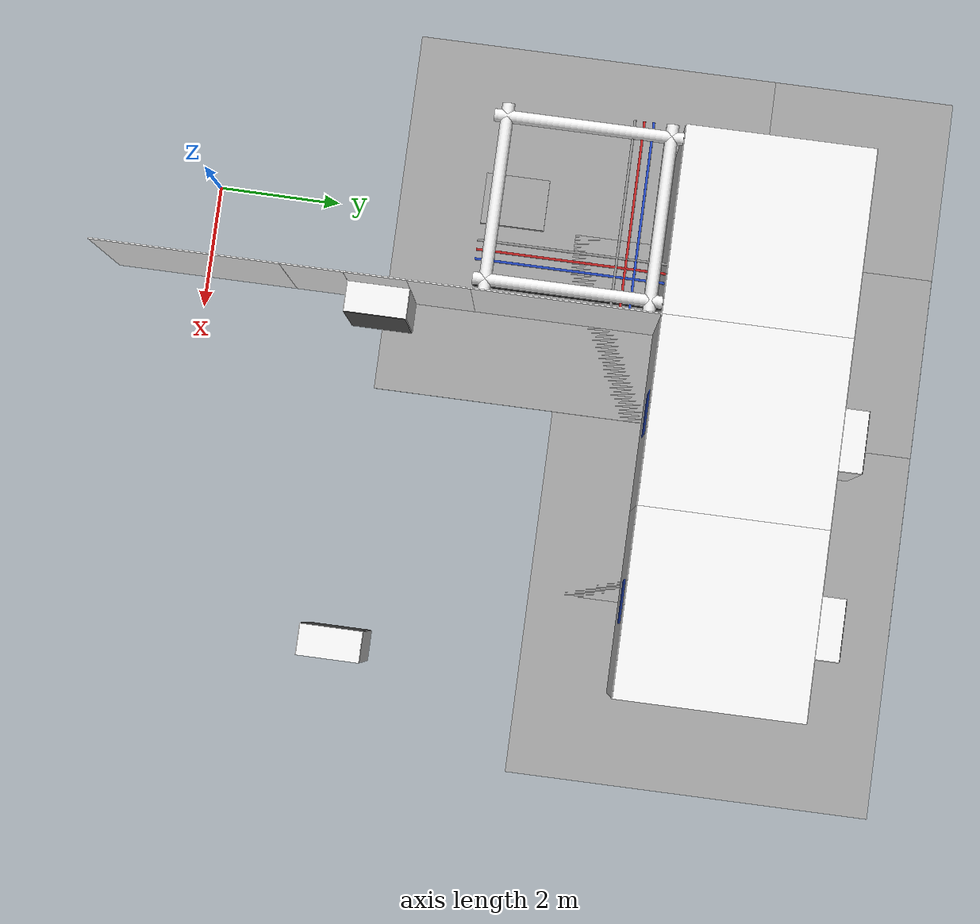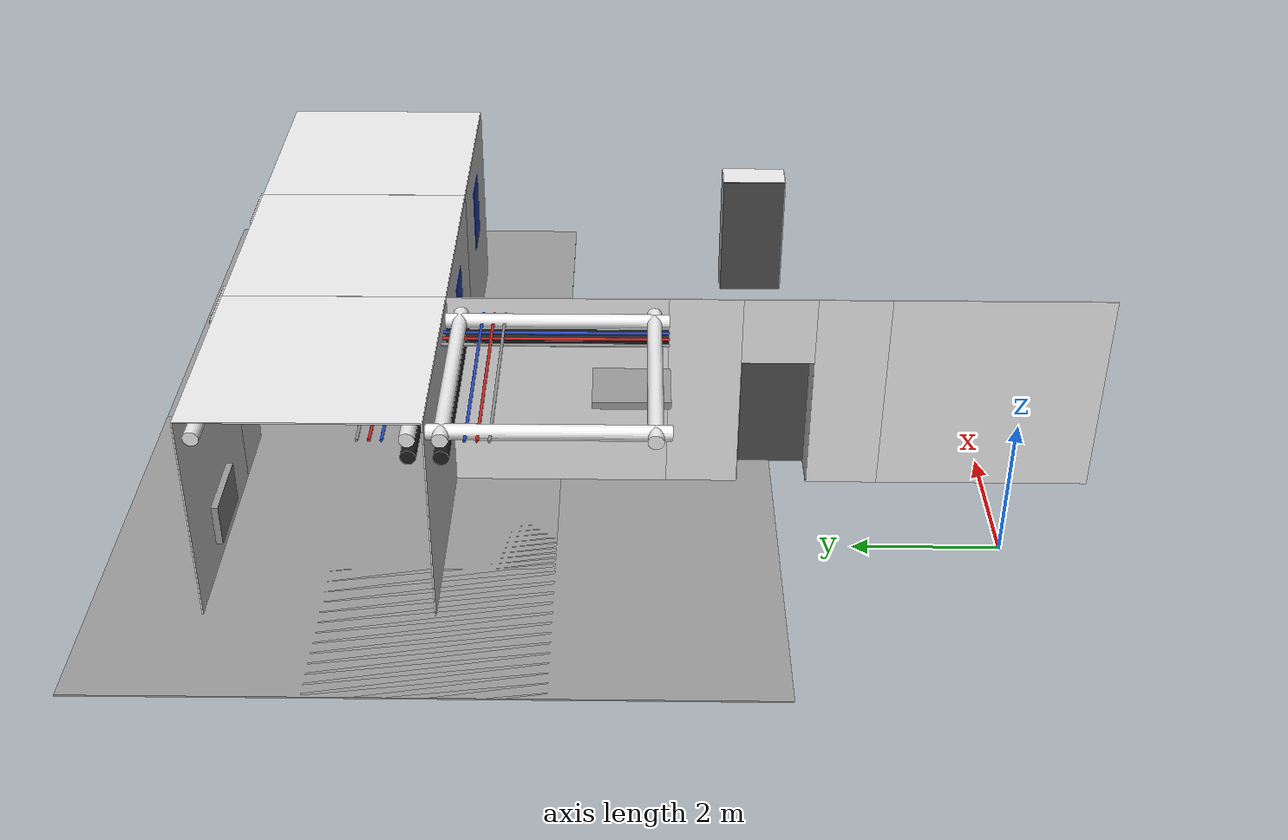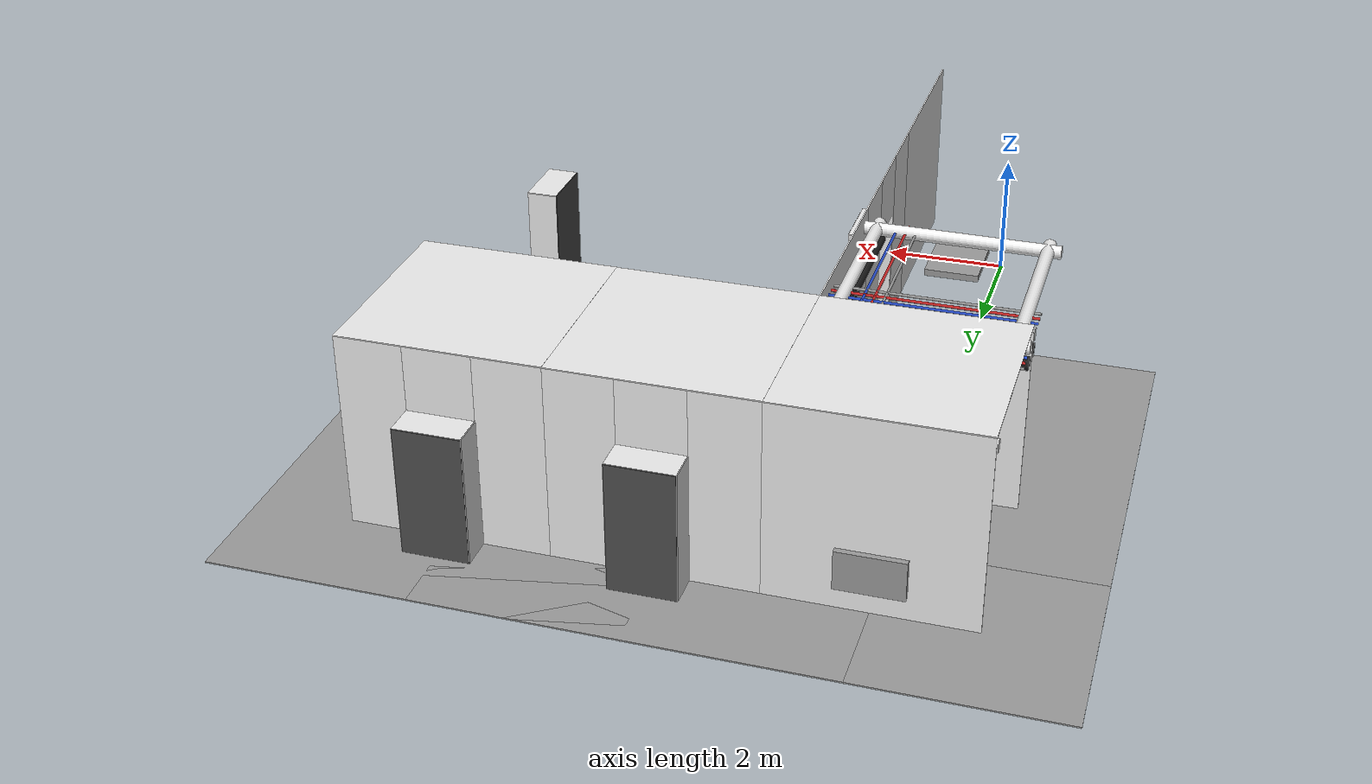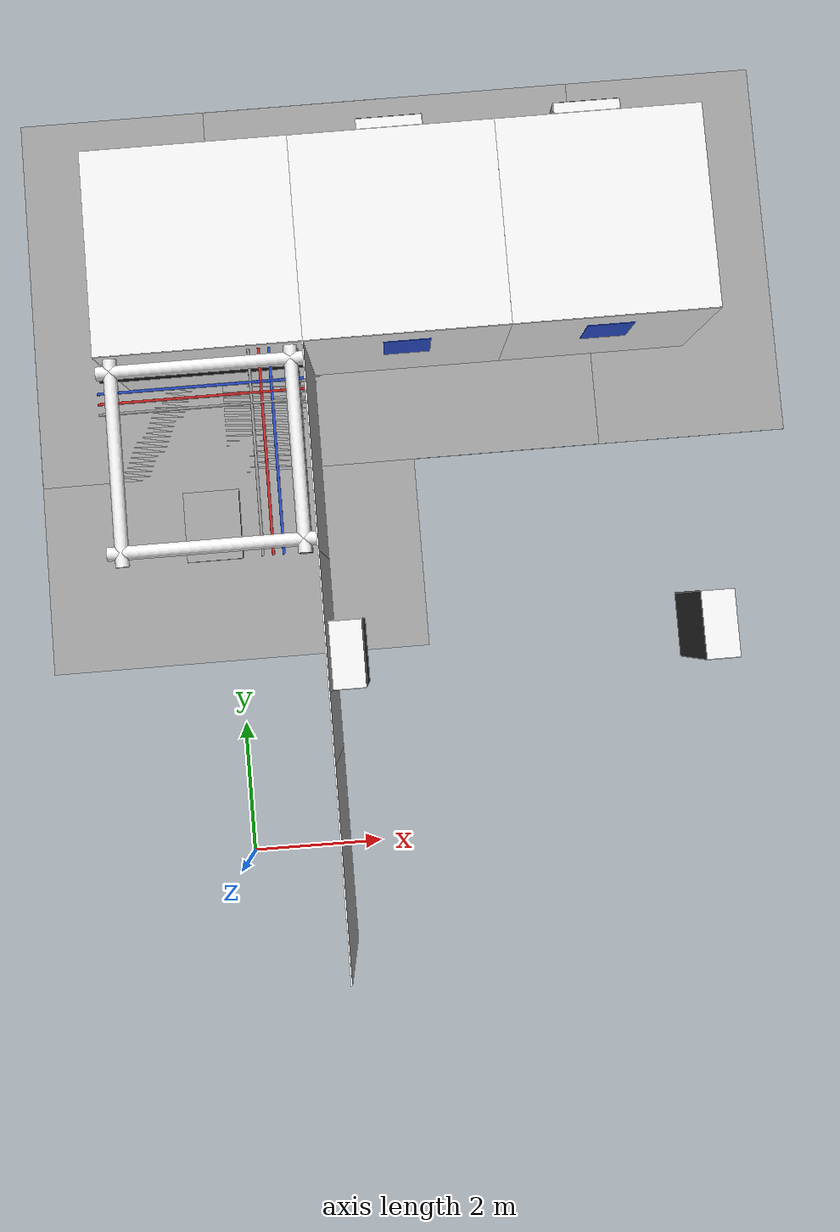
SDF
<sdf version="1.6">
 <world name="default">
  <model name="wall_right_0_0_0_0">
   <static>1</static>
   <pose>1.5 0.0 1.5 0.0 0.0 1.57</pose>
   <link name="link">
    <collision name="collision"><geometry><box><size>3.0 0.02 3.0</size></box></geometry></collision>
    <visual name="visual">
     <material>
      <script><name>Gazebo/White</name><uri>file://media/materials/scripts/gazebo.material</uri></script>
     </material>
     <geometry><box><size>3.0 0.02 3.0</size></box></geometry>
    </visual>
   </link>
  </model>
  <model name="wall_right_front_left_0_1_0_1">
   <static>1</static>
   <pose>1.5 4.0 1.5 0.0 0.0 1.57</pose>
   <link name="link">
    <collision name="collision"><geometry><box><size>1.0 0.02 3.0</size></box></geometry></collision>
    <visual name="visual">
     <material>
      <script><name>Gazebo/White</name><uri>file://media/materials/scripts/gazebo.material</uri></script>
     </material>
     <geometry><box><size>1.0 0.02 3.0</size></box></geometry>
    </visual>
   </link>
  </model>
  <model name="wall_right_front_right_0_1_0_1">
   <static>1</static>
   <pose>1.5 2.0 1.5 0.0 0.0 1.57</pose>
   <link name="link">
    <collision name="collision"><geometry><box><size>1.0 0.02 3.0</size></box></geometry></collision>
    <visual name="visual">
     <material>
      <script><name>Gazebo/White</name><uri>file://media/materials/scripts/gazebo.material</uri></script>
     </material>
     <geometry><box><size>1.0 0.02 3.0</size></box></geometry>
    </visual>
   </link>
  </model>
  <model name="wall_right_front_up_0_1_0_1">
   <static>1</static>
   <pose>1.5 3.0 2.5 0.0 0.0 1.57</pose>
   <link name="link">
    <collision name="collision"><geometry><box><size>1.0 0.02 1.0</size></box></geometry></collision>
    <visual name="visual">
     <material>
      <script><name>Gazebo/White</name><uri>file://media/materials/scripts/gazebo.material</uri></script>
     </material>
     <geometry><box><size>1.0 0.02 1.0</size></box></geometry>
    </visual>
   </link>
  </model>
  <model name="wall_right_inside_back_0_1_0_1">
   <static>1</static>
   <pose>2.0 3.0 1.0 0.0 0.0 1.57</pose>
   <link name="link">
    <collision name="collision"><geometry><box><size>1 0.02 2</size></box></geometry></collision>
    <visual name="visual">
     <material>
      <script><name>Gazebo/DarkGrey</name><uri>file://media/materials/scripts/gazebo.material</uri></script>
     </material>
     <geometry><box><size>1 0.02 2</size></box></geometry>
    </visual>
   </link>
  </model>
  <model name="wall_right_inside_left_0_1_0_1">
   <static>1</static>
   <pose>1.75 3.5 1.0 0.0 0.0 0.0</pose>
   <link name="link">
    <collision name="collision"><geometry><box><size>0.5 0.02 2</size></box></geometry></collision>
    <visual name="visual">
     <material>
      <script><name>Gazebo/White</name><uri>file://media/materials/scripts/gazebo.material</uri></script>
     </material>
     <geometry><box><size>0.5 0.02 2</size></box></geometry>
    </visual>
   </link>
  </model>
  <model name="wall_right_inside_right_0_1_0_1">
   <static>1</static>
   <pose>1.75 2.5 1.0 0.0 0.0 0.0</pose>
   <link name="link">
    <collision name="collision"><geometry><box><size>0.5 0.02 2</size></box></geometry></collision>
    <visual name="visual">
     <material>
      <script><name>Gazebo/White</name><uri>file://media/materials/scripts/gazebo.material</uri></script>
     </material>
     <geometry><box><size>0.5 0.02 2</size></box></geometry>
    </visual>
   </link>
  </model>
  <model name="wall_right_inside_top_0_1_0_1">
   <static>1</static>
   <pose>1.75 3.0 2.0 1.57 0.0 1.57</pose>
   <link name="link">
    <collision name="collision"><geometry><box><size>1 0.02 0.5</size></box></geometry></collision>
    <visual name="visual">
     <material>
      <script><name>Gazebo/White</name><uri>file://media/materials/scripts/gazebo.material</uri></script>
     </material>
     <geometry><box><size>1 0.02 0.5</size></box></geometry>
    </visual>
   </link>
  </model>
  <model name="wall_right_0_2_0_3">
   <static>1</static>
   <pose>1.5 6.0 1.5 0.0 0.0 1.57</pose>
   <link name="link">
    <collision name="collision"><geometry><box><size>3.0 0.02 3.0</size></box></geometry></collision>
    <visual name="visual">
     <material>
      <script><name>Gazebo/White</name><uri>file://media/materials/scripts/gazebo.material</uri></script>
     </material>
     <geometry><box><size>3.0 0.02 3.0</size></box></geometry>
    </visual>
   </link>
  </model>
  <model name="ceiling_1_0_2_0_3">
   <pose>0.0 5.0 2.55 0.0 0.0 0.0</pose>
   <link name="link_1">
    <visual name="visual">
     <geometry><box><size>0.8 1 0.1</size></box></geometry>
     <material>
      <script><uri>file://media/materials/scripts/gazebo.material</uri><name>Gazebo/Grey</name></script>
     </material>
    </visual>
    <collision name="collision"><geometry><box><size>0.8 1 0.1</size></box></geometry></collision>
   </link>
   <static>1</static>
  </model>
  <model name="white_pipe_left_0_2_0_3">
   <static>1</static>
   <pose>0.0 6.0 2.76 0.0 0.0 0.0</pose>
   <link name="link_0">
    <visual name="visual">
     <pose>-1.3 0 0 1.57 0 0</pose>
     <geometry><cylinder><radius>0.1</radius><length>3.0</length></cylinder></geometry>
     <material>
      <script><uri>file://media/materials/scripts/gazebo.material</uri><name>Gazebo/White</name></script>
     </material>
    </visual>
    <collision name="collision">
     <pose>-1.3 0 0 1.57 0 0</pose>
     <geometry><cylinder><radius>0.1</radius><length>3.0</length></cylinder></geometry>
    </collision>
   </link>
  </model>
  <model name="white_pipe_right_0_2_0_3">
   <static>1</static>
   <pose>0.0 6.0 2.76 0.0 0.0 0.0</pose>
   <link name="link_0">
    <visual name="visual">
     <pose>1.3 0 0 1.57 0 0</pose>
     <geometry><cylinder><radius>0.1</radius><length>3.0</length></cylinder></geometry>
     <material>
      <script><uri>file://media/materials/scripts/gazebo.material</uri><name>Gazebo/White</name></script>
     </material>
    </visual>
    <collision name="collision">
     <pose>1.3 0 0 1.57 0 0</pose>
     <geometry><cylinder><radius>0.1</radius><length>3.0</length></cylinder></geometry>
    </collision>
   </link>
  </model>
  <model name="black_pipe_right_0_2_0_3">
   <static>1</static>
   <pose>0.0 6.0 2.76 0.0 0.0 0.0</pose>
   <link name="link_0">
    <visual name="visual">
     <pose>1.3 0 -0.25 1.57 0 0</pose>
     <geometry><cylinder><radius>0.1</radius><length>3.0</length></cylinder></geometry>
     <material>
      <script><uri>file://media/materials/scripts/gazebo.material</uri><name>Gazebo/Black</name></script>
     </material>
    </visual>
    <collision name="collision">
     <pose>1.3 0 -0.25 1.57 0 0</pose>
     <geometry><cylinder><radius>0.1</radius><length>3.0</length></cylinder></geometry>
    </collision>
   </link>
  </model>
  <model name="grey_pipe_right_0_2_0_3">
   <static>1</static>
   <pose>0.0 6.0 2.76 0.0 0.0 0.0</pose>
   <link name="link_0">
    <visual name="visual">
     <pose>0.7 0 0 1.57 0 0</pose>
     <geometry><cylinder><radius>0.02</radius><length>3.0</length></cylinder></geometry>
     <material>
      <script><uri>file://media/materials/scripts/gazebo.material</uri><name>Gazebo/Grey</name></script>
     </material>
    </visual>
    <collision name="collision">
     <pose>0.7 0 0 1.57 0 0</pose>
     <geometry><cylinder><radius>0.02</radius><length>3.0</length></cylinder></geometry>
    </collision>
   </link>
  </model>
  <model name="red_pipe_right_0_2_0_3">
   <static>1</static>
   <pose>0.0 6.0 2.76 0.0 0.0 0.0</pose>
   <link name="link_0">
    <visual name="visual">
     <pose>0.85 0 0 1.57 0 0</pose>
     <geometry><cylinder><radius>0.02</radius><length>3.0</length></cylinder></geometry>
     <material>
      <script><uri>file://media/materials/scripts/gazebo.material</uri><name>Gazebo/Red</name></script>
     </material>
    </visual>
    <collision name="collision">
     <pose>0.85 0 0 1.57 0 0</pose>
     <geometry><cylinder><radius>0.02</radius><length>3.0</length></cylinder></geometry>
    </collision>
   </link>
  </model>
  <model name="blue_pipe_right_0_2_0_3">
   <static>1</static>
   <pose>0.0 6.0 2.76 0.0 0.0 0.0</pose>
   <link name="link_0">
    <visual name="visual">
     <pose>1 0 0 1.57 0 0</pose>
     <geometry><cylinder><radius>0.02</radius><length>3.0</length></cylinder></geometry>
     <material>
      <script><uri>file://media/materials/scripts/gazebo.material</uri><name>Gazebo/Blue</name></script>
     </material>
    </visual>
    <collision name="collision">
     <pose>1 0 0 1.57 0 0</pose>
     <geometry><cylinder><radius>0.02</radius><length>3.0</length></cylinder></geometry>
    </collision>
   </link>
  </model>
  <model name="white_pipe_left_1_0_2_0_3">
   <static>1</static>
   <pose>0.0 6.0 2.76 0.0 0.0 1.57</pose>
   <link name="link_0">
    <visual name="visual">
     <pose>-1.3 0 0 1.57 0 0</pose>
     <geometry><cylinder><radius>0.1</radius><length>3.0</length></cylinder></geometry>
     <material>
      <script><uri>file://media/materials/scripts/gazebo.material</uri><name>Gazebo/White</name></script>
     </material>
    </visual>
    <collision name="collision">
     <pose>-1.3 0 0 1.57 0 0</pose>
     <geometry><cylinder><radius>0.1</radius><length>3.0</length></cylinder></geometry>
    </collision>
   </link>
  </model>
  <model name="white_pipe_right_1_0_2_0_3">
   <static>1</static>
   <pose>0.0 6.0 2.76 0.0 0.0 1.57</pose>
   <link name="link_0">
    <visual name="visual">
     <pose>1.3 0 0 1.57 0 0</pose>
     <geometry><cylinder><radius>0.1</radius><length>3.0</length></cylinder></geometry>
     <material>
      <script><uri>file://media/materials/scripts/gazebo.material</uri><name>Gazebo/White</name></script>
     </material>
    </visual>
    <collision name="collision">
     <pose>1.3 0 0 1.57 0 0</pose>
     <geometry><cylinder><radius>0.1</radius><length>3.0</length></cylinder></geometry>
    </collision>
   </link>
  </model>
  <model name="black_pipe_right_1_0_2_0_3">
   <static>1</static>
   <pose>0.0 6.0 2.76 0.0 0.0 1.57</pose>
   <link name="link_0">
    <visual name="visual">
     <pose>1.3 0 -0.25 1.57 0 0</pose>
     <geometry><cylinder><radius>0.1</radius><length>3.0</length></cylinder></geometry>
     <material>
      <script><uri>file://media/materials/scripts/gazebo.material</uri><name>Gazebo/Black</name></script>
     </material>
    </visual>
    <collision name="collision">
     <pose>1.3 0 -0.25 1.57 0 0</pose>
     <geometry><cylinder><radius>0.1</radius><length>3.0</length></cylinder></geometry>
    </collision>
   </link>
  </model>
  <model name="grey_pipe_right_1_0_2_0_3">
   <static>1</static>
   <pose>0.0 6.0 2.76 0.0 0.0 1.57</pose>
   <link name="link_0">
    <visual name="visual">
     <pose>0.7 0 0 1.57 0 0</pose>
     <geometry><cylinder><radius>0.02</radius><length>3.0</length></cylinder></geometry>
     <material>
      <script><uri>file://media/materials/scripts/gazebo.material</uri><name>Gazebo/Grey</name></script>
     </material>
    </visual>
    <collision name="collision">
     <pose>0.7 0 0 1.57 0 0</pose>
     <geometry><cylinder><radius>0.02</radius><length>3.0</length></cylinder></geometry>
    </collision>
   </link>
  </model>
  <model name="red_pipe_right_1_0_2_0_3">
   <static>1</static>
   <pose>0.0 6.0 2.76 0.0 0.0 1.57</pose>
   <link name="link_0">
    <visual name="visual">
     <pose>0.85 0 0 1.57 0 0</pose>
     <geometry><cylinder><radius>0.02</radius><length>3.0</length></cylinder></geometry>
     <material>
      <script><uri>file://media/materials/scripts/gazebo.material</uri><name>Gazebo/Red</name></script>
     </material>
    </visual>
    <collision name="collision">
     <pose>0.85 0 0 1.57 0 0</pose>
     <geometry><cylinder><radius>0.02</radius><length>3.0</length></cylinder></geometry>
    </collision>
   </link>
  </model>
  <model name="blue_pipe_right_1_0_2_0_3">
   <static>1</static>
   <pose>0.0 6.0 2.76 0.0 0.0 1.57</pose>
   <link name="link_0">
    <visual name="visual">
     <pose>1 0 0 1.57 0 0</pose>
     <geometry><cylinder><radius>0.02</radius><length>3.0</length></cylinder></geometry>
     <material>
      <script><uri>file://media/materials/scripts/gazebo.material</uri><name>Gazebo/Blue</name></script>
     </material>
    </visual>
    <collision name="collision">
     <pose>1 0 0 1.57 0 0</pose>
     <geometry><cylinder><radius>0.02</radius><length>3.0</length></cylinder></geometry>
    </collision>
   </link>
  </model>
  <model name="wall_bottom_0_2_0_3">
   <static>1</static>
   <pose>0.0 6.0 0.0 0.0 0.0 0.0</pose>
   <link name="link">
    <collision name="collision"><geometry><box><size>6.0 6.0 0.02</size></box></geometry></collision>
    <visual name="visual">
     <material>
      <script><name>Gazebo/Grey</name><uri>file://media/materials/scripts/gazebo.material</uri></script>
     </material>
     <geometry><box><size>6.0 6.0 0.02</size></box></geometry>
    </visual>
   </link>
  </model>
  <model name="wall_right_0_3_0_1">
   <static>1</static>
   <pose>0.0 7.5 1.5 0.0 0.0 0.0</pose>
   <link name="link">
    <collision name="collision"><geometry><box><size>3.0 0.02 3.0</size></box></geometry></collision>
    <visual name="visual">
     <material>
      <script><name>Gazebo/White</name><uri>file://media/materials/scripts/gazebo.material</uri></script>
     </material>
     <geometry><box><size>3.0 0.02 3.0</size></box></geometry>
    </visual>
   </link>
  </model>
  <model name="wall_left_0_3_0_1">
   <static>1</static>
   <pose>0.0 10.5 1.5 0.0 0.0 0.0</pose>
   <link name="link">
    <collision name="collision"><geometry><box><size>3.0 0.02 3.0</size></box></geometry></collision>
    <visual name="visual">
     <material>
      <script><name>Gazebo/White</name><uri>file://media/materials/scripts/gazebo.material</uri></script>
     </material>
     <geometry><box><size>3.0 0.02 3.0</size></box></geometry>
    </visual>
   </link>
  </model>
  <model name="wall_top_0_3_0_1">
   <static>1</static>
   <pose>0.0 9.0 3.0 1.57 0.0 -1.57</pose>
   <link name="link">
    <collision name="collision"><geometry><box><size>3.0 0.02 3.0</size></box></geometry></collision>
    <visual name="visual">
     <material>
      <script><name>Gazebo/White</name><uri>file://media/materials/scripts/gazebo.material</uri></script>
     </material>
     <geometry><box><size>3.0 0.02 3.0</size></box></geometry>
    </visual>
   </link>
  </model>
  <model name="ceiling_1_0_3_0_1">
   <pose>0.0 9.0 2.55 0.0 0.0 -1.57</pose>
   <link name="link_1">
    <visual name="visual">
     <geometry><box><size>0.8 1 0.1</size></box></geometry>
     <material>
      <script><uri>file://media/materials/scripts/gazebo.material</uri><name>Gazebo/Grey</name></script>
     </material>
    </visual>
    <collision name="collision"><geometry><box><size>0.8 1 0.1</size></box></geometry></collision>
   </link>
   <static>1</static>
  </model>
  <model name="ceiling_1_0_3_2_1">
   <pose>1.0 9.0 2.55 0.0 0.0 -1.57</pose>
   <link name="link_1">
    <visual name="visual">
     <geometry><box><size>0.8 1 0.1</size></box></geometry>
     <material>
      <script><uri>file://media/materials/scripts/gazebo.material</uri><name>Gazebo/Grey</name></script>
     </material>
    </visual>
    <collision name="collision"><geometry><box><size>0.8 1 0.1</size></box></geometry></collision>
   </link>
   <static>1</static>
  </model>
  <model name="white_pipe_left_0_3_0_1">
   <static>1</static>
   <pose>0.0 9.0 2.76 0.0 0.0 -1.57</pose>
   <link name="link_0">
    <visual name="visual">
     <pose>-1.3 0 0 1.57 0 0</pose>
     <geometry><cylinder><radius>0.1</radius><length>3.0</length></cylinder></geometry>
     <material>
      <script><uri>file://media/materials/scripts/gazebo.material</uri><name>Gazebo/White</name></script>
     </material>
    </visual>
    <collision name="collision">
     <pose>-1.3 0 0 1.57 0 0</pose>
     <geometry><cylinder><radius>0.1</radius><length>3.0</length></cylinder></geometry>
    </collision>
   </link>
  </model>
  <model name="white_pipe_right_0_3_0_1">
   <static>1</static>
   <pose>0.0 9.0 2.76 0.0 0.0 -1.57</pose>
   <link name="link_0">
    <visual name="visual">
     <pose>1.3 0 0 1.57 0 0</pose>
     <geometry><cylinder><radius>0.1</radius><length>3.0</length></cylinder></geometry>
     <material>
      <script><uri>file://media/materials/scripts/gazebo.material</uri><name>Gazebo/White</name></script>
     </material>
    </visual>
    <collision name="collision">
     <pose>1.3 0 0 1.57 0 0</pose>
     <geometry><cylinder><radius>0.1</radius><length>3.0</length></cylinder></geometry>
    </collision>
   </link>
  </model>
  <model name="black_pipe_right_0_3_0_1">
   <static>1</static>
   <pose>0.0 9.0 2.76 0.0 0.0 -1.57</pose>
   <link name="link_0">
    <visual name="visual">
     <pose>1.3 0 -0.25 1.57 0 0</pose>
     <geometry><cylinder><radius>0.1</radius><length>3.0</length></cylinder></geometry>
     <material>
      <script><uri>file://media/materials/scripts/gazebo.material</uri><name>Gazebo/Black</name></script>
     </material>
    </visual>
    <collision name="collision">
     <pose>1.3 0 -0.25 1.57 0 0</pose>
     <geometry><cylinder><radius>0.1</radius><length>3.0</length></cylinder></geometry>
    </collision>
   </link>
  </model>
  <model name="grey_pipe_right_0_3_0_1">
   <static>1</static>
   <pose>0.0 9.0 2.76 0.0 0.0 -1.57</pose>
   <link name="link_0">
    <visual name="visual">
     <pose>0.7 0 0 1.57 0 0</pose>
     <geometry><cylinder><radius>0.02</radius><length>3.0</length></cylinder></geometry>
     <material>
      <script><uri>file://media/materials/scripts/gazebo.material</uri><name>Gazebo/Grey</name></script>
     </material>
    </visual>
    <collision name="collision">
     <pose>0.7 0 0 1.57 0 0</pose>
     <geometry><cylinder><radius>0.02</radius><length>3.0</length></cylinder></geometry>
    </collision>
   </link>
  </model>
  <model name="red_pipe_right_0_3_0_1">
   <static>1</static>
   <pose>0.0 9.0 2.76 0.0 0.0 -1.57</pose>
   <link name="link_0">
    <visual name="visual">
     <pose>0.85 0 0 1.57 0 0</pose>
     <geometry><cylinder><radius>0.02</radius><length>3.0</length></cylinder></geometry>
     <material>
      <script><uri>file://media/materials/scripts/gazebo.material</uri><name>Gazebo/Red</name></script>
     </material>
    </visual>
    <collision name="collision">
     <pose>0.85 0 0 1.57 0 0</pose>
     <geometry><cylinder><radius>0.02</radius><length>3.0</length></cylinder></geometry>
    </collision>
   </link>
  </model>
  <model name="blue_pipe_right_0_3_0_1">
   <static>1</static>
   <pose>0.0 9.0 2.76 0.0 0.0 -1.57</pose>
   <link name="link_0">
    <visual name="visual">
     <pose>1 0 0 1.57 0 0</pose>
     <geometry><cylinder><radius>0.02</radius><length>3.0</length></cylinder></geometry>
     <material>
      <script><uri>file://media/materials/scripts/gazebo.material</uri><name>Gazebo/Blue</name></script>
     </material>
    </visual>
    <collision name="collision">
     <pose>1 0 0 1.57 0 0</pose>
     <geometry><cylinder><radius>0.02</radius><length>3.0</length></cylinder></geometry>
    </collision>
   </link>
  </model>
  <model name="wall_bottom_0_3_0_1">
   <static>1</static>
   <pose>0.0 9.0 0.0 0.0 0.0 -1.57</pose>
   <link name="link">
    <collision name="collision"><geometry><box><size>6.0 6.0 0.02</size></box></geometry></collision>
    <visual name="visual">
     <material>
      <script><name>Gazebo/Grey</name><uri>file://media/materials/scripts/gazebo.material</uri></script>
     </material>
     <geometry><box><size>6.0 6.0 0.02</size></box></geometry>
    </visual>
   </link>
  </model>
  <model name="panel_0_3_0_1">
   <static>1</static>
   <pose>0.0 10.5 0.66 0.0 0.0 -1.57</pose>
   <link name="link">
    <collision name="collision"><geometry><box><size>0.2 1 0.6</size></box></geometry></collision>
    <visual name="visual">
     <material>
      <script><name>Gazebo/Grey</name><uri>file://media/materials/scripts/gazebo.material</uri></script>
     </material>
     <geometry><box><size>0.2 1 0.6</size></box></geometry>
    </visual>
   </link>
  </model>
  <model name="wall_right_1_3_0_1">
   <static>1</static>
   <pose>3.0 7.5 1.5 0.0 0.0 0.0</pose>
   <link name="link">
    <collision name="collision"><geometry><box><size>3.0 0.02 3.0</size></box></geometry></collision>
    <visual name="visual">
     <material>
      <script><name>Gazebo/White</name><uri>file://media/materials/scripts/gazebo.material</uri></script>
     </material>
     <geometry><box><size>3.0 0.02 3.0</size></box></geometry>
    </visual>
   </link>
  </model>
  <model name="wall_top_1_3_0_1">
   <static>1</static>
   <pose>3.0 9.0 3.0 1.57 0.0 -1.57</pose>
   <link name="link">
    <collision name="collision"><geometry><box><size>3.0 0.02 3.0</size></box></geometry></collision>
    <visual name="visual">
     <material>
      <script><name>Gazebo/White</name><uri>file://media/materials/scripts/gazebo.material</uri></script>
     </material>
     <geometry><box><size>3.0 0.02 3.0</size></box></geometry>
    </visual>
   </link>
  </model>
  <model name="ceiling_1_1_3_0_1">
   <pose>3.0 9.0 2.55 0.0 0.0 -1.57</pose>
   <link name="link_1">
    <visual name="visual">
     <geometry><box><size>0.8 1 0.1</size></box></geometry>
     <material>
      <script><uri>file://media/materials/scripts/gazebo.material</uri><name>Gazebo/Grey</name></script>
     </material>
    </visual>
    <collision name="collision"><geometry><box><size>0.8 1 0.1</size></box></geometry></collision>
   </link>
   <static>1</static>
  </model>
  <model name="ceiling_1_1_3_1_1">
   <pose>2.0 9.0 2.55 0.0 0.0 -1.57</pose>
   <link name="link_1">
    <visual name="visual">
     <geometry><box><size>0.8 1 0.1</size></box></geometry>
     <material>
      <script><uri>file://media/materials/scripts/gazebo.material</uri><name>Gazebo/Grey</name></script>
     </material>
    </visual>
    <collision name="collision"><geometry><box><size>0.8 1 0.1</size></box></geometry></collision>
   </link>
   <static>1</static>
  </model>
  <model name="ceiling_1_1_3_2_1">
   <pose>4.0 9.0 2.55 0.0 0.0 -1.57</pose>
   <link name="link_1">
    <visual name="visual">
     <geometry><box><size>0.8 1 0.1</size></box></geometry>
     <material>
      <script><uri>file://media/materials/scripts/gazebo.material</uri><name>Gazebo/Grey</name></script>
     </material>
    </visual>
    <collision name="collision"><geometry><box><size>0.8 1 0.1</size></box></geometry></collision>
   </link>
   <static>1</static>
  </model>
  <model name="white_pipe_left_1_3_0_1">
   <static>1</static>
   <pose>3.0 9.0 2.76 0.0 0.0 -1.57</pose>
   <link name="link_0">
    <visual name="visual">
     <pose>-1.3 0 0 1.57 0 0</pose>
     <geometry><cylinder><radius>0.1</radius><length>3.0</length></cylinder></geometry>
     <material>
      <script><uri>file://media/materials/scripts/gazebo.material</uri><name>Gazebo/White</name></script>
     </material>
    </visual>
    <collision name="collision">
     <pose>-1.3 0 0 1.57 0 0</pose>
     <geometry><cylinder><radius>0.1</radius><length>3.0</length></cylinder></geometry>
    </collision>
   </link>
  </model>
  <model name="white_pipe_right_1_3_0_1">
   <static>1</static>
   <pose>3.0 9.0 2.76 0.0 0.0 -1.57</pose>
   <link name="link_0">
    <visual name="visual">
     <pose>1.3 0 0 1.57 0 0</pose>
     <geometry><cylinder><radius>0.1</radius><length>3.0</length></cylinder></geometry>
     <material>
      <script><uri>file://media/materials/scripts/gazebo.material</uri><name>Gazebo/White</name></script>
     </material>
    </visual>
    <collision name="collision">
     <pose>1.3 0 0 1.57 0 0</pose>
     <geometry><cylinder><radius>0.1</radius><length>3.0</length></cylinder></geometry>
    </collision>
   </link>
  </model>
  <model name="black_pipe_right_1_3_0_1">
   <static>1</static>
   <pose>3.0 9.0 2.76 0.0 0.0 -1.57</pose>
   <link name="link_0">
    <visual name="visual">
     <pose>1.3 0 -0.25 1.57 0 0</pose>
     <geometry><cylinder><radius>0.1</radius><length>3.0</length></cylinder></geometry>
     <material>
      <script><uri>file://media/materials/scripts/gazebo.material</uri><name>Gazebo/Black</name></script>
     </material>
    </visual>
    <collision name="collision">
     <pose>1.3 0 -0.25 1.57 0 0</pose>
     <geometry><cylinder><radius>0.1</radius><length>3.0</length></cylinder></geometry>
    </collision>
   </link>
  </model>
  <model name="grey_pipe_right_1_3_0_1">
   <static>1</static>
   <pose>3.0 9.0 2.76 0.0 0.0 -1.57</pose>
   <link name="link_0">
    <visual name="visual">
     <pose>0.7 0 0 1.57 0 0</pose>
     <geometry><cylinder><radius>0.02</radius><length>3.0</length></cylinder></geometry>
     <material>
      <script><uri>file://media/materials/scripts/gazebo.material</uri><name>Gazebo/Grey</name></script>
     </material>
    </visual>
    <collision name="collision">
     <pose>0.7 0 0 1.57 0 0</pose>
     <geometry><cylinder><radius>0.02</radius><length>3.0</length></cylinder></geometry>
    </collision>
   </link>
  </model>
  <model name="red_pipe_right_1_3_0_1">
   <static>1</static>
   <pose>3.0 9.0 2.76 0.0 0.0 -1.57</pose>
   <link name="link_0">
    <visual name="visual">
     <pose>0.85 0 0 1.57 0 0</pose>
     <geometry><cylinder><radius>0.02</radius><length>3.0</length></cylinder></geometry>
     <material>
      <script><uri>file://media/materials/scripts/gazebo.material</uri><name>Gazebo/Red</name></script>
     </material>
    </visual>
    <collision name="collision">
     <pose>0.85 0 0 1.57 0 0</pose>
     <geometry><cylinder><radius>0.02</radius><length>3.0</length></cylinder></geometry>
    </collision>
   </link>
  </model>
  <model name="blue_pipe_right_1_3_0_1">
   <static>1</static>
   <pose>3.0 9.0 2.76 0.0 0.0 -1.57</pose>
   <link name="link_0">
    <visual name="visual">
     <pose>1 0 0 1.57 0 0</pose>
     <geometry><cylinder><radius>0.02</radius><length>3.0</length></cylinder></geometry>
     <material>
      <script><uri>file://media/materials/scripts/gazebo.material</uri><name>Gazebo/Blue</name></script>
     </material>
    </visual>
    <collision name="collision">
     <pose>1 0 0 1.57 0 0</pose>
     <geometry><cylinder><radius>0.02</radius><length>3.0</length></cylinder></geometry>
    </collision>
   </link>
  </model>
  <model name="panel_1_3_0_1">
   <static>1</static>
   <pose>3.0 7.5 1.95 0.0 0.0 -1.57</pose>
   <link name="link">
    <collision name="collision"><geometry><box><size>0.04 0.7 1</size></box></geometry></collision>
    <visual name="visual">
     <material>
      <script><name>Gazebo/Blue</name><uri>file://media/materials/scripts/gazebo.material</uri></script>
     </material>
     <geometry><box><size>0.04 0.7 1</size></box></geometry>
    </visual>
   </link>
  </model>
  <model name="wall_left_front_left_1_3_0_1">
   <static>1</static>
   <pose>4.0 10.5 1.5 0.0 0.0 0.0</pose>
   <link name="link">
    <collision name="collision"><geometry><box><size>1.0 0.02 3.0</size></box></geometry></collision>
    <visual name="visual">
     <material>
      <script><name>Gazebo/White</name><uri>file://media/materials/scripts/gazebo.material</uri></script>
     </material>
     <geometry><box><size>1.0 0.02 3.0</size></box></geometry>
    </visual>
   </link>
  </model>
  <model name="wall_left_front_right_1_3_0_1">
   <static>1</static>
   <pose>2.0 10.5 1.5 0.0 0.0 0.0</pose>
   <link name="link">
    <collision name="collision"><geometry><box><size>1.0 0.02 3.0</size></box></geometry></collision>
    <visual name="visual">
     <material>
      <script><name>Gazebo/White</name><uri>file://media/materials/scripts/gazebo.material</uri></script>
     </material>
     <geometry><box><size>1.0 0.02 3.0</size></box></geometry>
    </visual>
   </link>
  </model>
  <model name="wall_left_front_up_1_3_0_1">
   <static>1</static>
   <pose>3.0 10.5 2.5 0.0 0.0 0.0</pose>
   <link name="link">
    <collision name="collision"><geometry><box><size>1.0 0.02 1.0</size></box></geometry></collision>
    <visual name="visual">
     <material>
      <script><name>Gazebo/White</name><uri>file://media/materials/scripts/gazebo.material</uri></script>
     </material>
     <geometry><box><size>1.0 0.02 1.0</size></box></geometry>
    </visual>
   </link>
  </model>
  <model name="wall_left_inside_back_1_3_0_1">
   <static>1</static>
   <pose>3.0 11.0 1.0 0.0 0.0 0.0</pose>
   <link name="link">
    <collision name="collision"><geometry><box><size>1 0.02 2</size></box></geometry></collision>
    <visual name="visual">
     <material>
      <script><name>Gazebo/DarkGrey</name><uri>file://media/materials/scripts/gazebo.material</uri></script>
     </material>
     <geometry><box><size>1 0.02 2</size></box></geometry>
    </visual>
   </link>
  </model>
  <model name="wall_left_inside_left_1_3_0_1">
   <static>1</static>
   <pose>3.5 10.75 1.0 0.0 0.0 -1.57</pose>
   <link name="link">
    <collision name="collision"><geometry><box><size>0.5 0.02 2</size></box></geometry></collision>
    <visual name="visual">
     <material>
      <script><name>Gazebo/White</name><uri>file://media/materials/scripts/gazebo.material</uri></script>
     </material>
     <geometry><box><size>0.5 0.02 2</size></box></geometry>
    </visual>
   </link>
  </model>
  <model name="wall_left_inside_right_1_3_0_1">
   <static>1</static>
   <pose>2.5 10.75 1.0 0.0 0.0 -1.57</pose>
   <link name="link">
    <collision name="collision"><geometry><box><size>0.5 0.02 2</size></box></geometry></collision>
    <visual name="visual">
     <material>
      <script><name>Gazebo/White</name><uri>file://media/materials/scripts/gazebo.material</uri></script>
     </material>
     <geometry><box><size>0.5 0.02 2</size></box></geometry>
    </visual>
   </link>
  </model>
  <model name="wall_left_inside_top_1_3_0_1">
   <static>1</static>
   <pose>3.0 10.75 2.0 1.57 0.0 0.0</pose>
   <link name="link">
    <collision name="collision"><geometry><box><size>1 0.02 0.5</size></box></geometry></collision>
    <visual name="visual">
     <material>
      <script><name>Gazebo/White</name><uri>file://media/materials/scripts/gazebo.material</uri></script>
     </material>
     <geometry><box><size>1 0.02 0.5</size></box></geometry>
    </visual>
   </link>
  </model>
  <model name="wall_bottom_1_3_0_1">
   <static>1</static>
   <pose>3.0 9.0 0.0 0.0 0.0 -1.57</pose>
   <link name="link">
    <collision name="collision"><geometry><box><size>6.0 6.0 0.02</size></box></geometry></collision>
    <visual name="visual">
     <material>
      <script><name>Gazebo/Grey</name><uri>file://media/materials/scripts/gazebo.material</uri></script>
     </material>
     <geometry><box><size>6.0 6.0 0.02</size></box></geometry>
    </visual>
   </link>
  </model>
  <model name="wall_right_2_3_0_1">
   <static>1</static>
   <pose>6.0 7.5 1.5 0.0 0.0 0.0</pose>
   <link name="link">
    <collision name="collision"><geometry><box><size>3.0 0.02 3.0</size></box></geometry></collision>
    <visual name="visual">
     <material>
      <script><name>Gazebo/White</name><uri>file://media/materials/scripts/gazebo.material</uri></script>
     </material>
     <geometry><box><size>3.0 0.02 3.0</size></box></geometry>
    </visual>
   </link>
  </model>
  <model name="wall_top_2_3_0_1">
   <static>1</static>
   <pose>6.0 9.0 3.0 1.57 0.0 -1.57</pose>
   <link name="link">
    <collision name="collision"><geometry><box><size>3.0 0.02 3.0</size></box></geometry></collision>
    <visual name="visual">
     <material>
      <script><name>Gazebo/White</name><uri>file://media/materials/scripts/gazebo.material</uri></script>
     </material>
     <geometry><box><size>3.0 0.02 3.0</size></box></geometry>
    </visual>
   </link>
  </model>
  <model name="ceiling_1_2_3_0_1">
   <pose>6.0 9.0 2.55 0.0 0.0 -1.57</pose>
   <link name="link_1">
    <visual name="visual">
     <geometry><box><size>0.8 1 0.1</size></box></geometry>
     <material>
      <script><uri>file://media/materials/scripts/gazebo.material</uri><name>Gazebo/Grey</name></script>
     </material>
    </visual>
    <collision name="collision"><geometry><box><size>0.8 1 0.1</size></box></geometry></collision>
   </link>
   <static>1</static>
  </model>
  <model name="ceiling_1_2_3_1_1">
   <pose>5.0 9.0 2.55 0.0 0.0 -1.57</pose>
   <link name="link_1">
    <visual name="visual">
     <geometry><box><size>0.8 1 0.1</size></box></geometry>
     <material>
      <script><uri>file://media/materials/scripts/gazebo.material</uri><name>Gazebo/Grey</name></script>
     </material>
    </visual>
    <collision name="collision"><geometry><box><size>0.8 1 0.1</size></box></geometry></collision>
   </link>
   <static>1</static>
  </model>
  <model name="ceiling_1_2_3_2_1">
   <pose>7.0 9.0 2.55 0.0 0.0 -1.57</pose>
   <link name="link_1">
    <visual name="visual">
     <geometry><box><size>0.8 1 0.1</size></box></geometry>
     <material>
      <script><uri>file://media/materials/scripts/gazebo.material</uri><name>Gazebo/Grey</name></script>
     </material>
    </visual>
    <collision name="collision"><geometry><box><size>0.8 1 0.1</size></box></geometry></collision>
   </link>
   <static>1</static>
  </model>
  <model name="white_pipe_left_2_3_0_1">
   <static>1</static>
   <pose>6.0 9.0 2.76 0.0 0.0 -1.57</pose>
   <link name="link_0">
    <visual name="visual">
     <pose>-1.3 0 0 1.57 0 0</pose>
     <geometry><cylinder><radius>0.1</radius><length>3.0</length></cylinder></geometry>
     <material>
      <script><uri>file://media/materials/scripts/gazebo.material</uri><name>Gazebo/White</name></script>
     </material>
    </visual>
    <collision name="collision">
     <pose>-1.3 0 0 1.57 0 0</pose>
     <geometry><cylinder><radius>0.1</radius><length>3.0</length></cylinder></geometry>
    </collision>
   </link>
  </model>
  <model name="white_pipe_right_2_3_0_1">
   <static>1</static>
   <pose>6.0 9.0 2.76 0.0 0.0 -1.57</pose>
   <link name="link_0">
    <visual name="visual">
     <pose>1.3 0 0 1.57 0 0</pose>
     <geometry><cylinder><radius>0.1</radius><length>3.0</length></cylinder></geometry>
     <material>
      <script><uri>file://media/materials/scripts/gazebo.material</uri><name>Gazebo/White</name></script>
     </material>
    </visual>
    <collision name="collision">
     <pose>1.3 0 0 1.57 0 0</pose>
     <geometry><cylinder><radius>0.1</radius><length>3.0</length></cylinder></geometry>
    </collision>
   </link>
  </model>
  <model name="black_pipe_right_2_3_0_1">
   <static>1</static>
   <pose>6.0 9.0 2.76 0.0 0.0 -1.57</pose>
   <link name="link_0">
    <visual name="visual">
     <pose>1.3 0 -0.25 1.57 0 0</pose>
     <geometry><cylinder><radius>0.1</radius><length>3.0</length></cylinder></geometry>
     <material>
      <script><uri>file://media/materials/scripts/gazebo.material</uri><name>Gazebo/Black</name></script>
     </material>
    </visual>
    <collision name="collision">
     <pose>1.3 0 -0.25 1.57 0 0</pose>
     <geometry><cylinder><radius>0.1</radius><length>3.0</length></cylinder></geometry>
    </collision>
   </link>
  </model>
  <model name="grey_pipe_right_2_3_0_1">
   <static>1</static>
   <pose>6.0 9.0 2.76 0.0 0.0 -1.57</pose>
   <link name="link_0">
    <visual name="visual">
     <pose>0.7 0 0 1.57 0 0</pose>
     <geometry><cylinder><radius>0.02</radius><length>3.0</length></cylinder></geometry>
     <material>
      <script><uri>file://media/materials/scripts/gazebo.material</uri><name>Gazebo/Grey</name></script>
     </material>
    </visual>
    <collision name="collision">
     <pose>0.7 0 0 1.57 0 0</pose>
     <geometry><cylinder><radius>0.02</radius><length>3.0</length></cylinder></geometry>
    </collision>
   </link>
  </model>
  <model name="red_pipe_right_2_3_0_1">
   <static>1</static>
   <pose>6.0 9.0 2.76 0.0 0.0 -1.57</pose>
   <link name="link_0">
    <visual name="visual">
     <pose>0.85 0 0 1.57 0 0</pose>
     <geometry><cylinder><radius>0.02</radius><length>3.0</length></cylinder></geometry>
     <material>
      <script><uri>file://media/materials/scripts/gazebo.material</uri><name>Gazebo/Red</name></script>
     </material>
    </visual>
    <collision name="collision">
     <pose>0.85 0 0 1.57 0 0</pose>
     <geometry><cylinder><radius>0.02</radius><length>3.0</length></cylinder></geometry>
    </collision>
   </link>
  </model>
  <model name="blue_pipe_right_2_3_0_1">
   <static>1</static>
   <pose>6.0 9.0 2.76 0.0 0.0 -1.57</pose>
   <link name="link_0">
    <visual name="visual">
     <pose>1 0 0 1.57 0 0</pose>
     <geometry><cylinder><radius>0.02</radius><length>3.0</length></cylinder></geometry>
     <material>
      <script><uri>file://media/materials/scripts/gazebo.material</uri><name>Gazebo/Blue</name></script>
     </material>
    </visual>
    <collision name="collision">
     <pose>1 0 0 1.57 0 0</pose>
     <geometry><cylinder><radius>0.02</radius><length>3.0</length></cylinder></geometry>
    </collision>
   </link>
  </model>
  <model name="panel_2_3_0_1">
   <static>1</static>
   <pose>6.0 7.5 1.95 0.0 0.0 -1.57</pose>
   <link name="link">
    <collision name="collision"><geometry><box><size>0.04 0.7 1</size></box></geometry></collision>
    <visual name="visual">
     <material>
      <script><name>Gazebo/Blue</name><uri>file://media/materials/scripts/gazebo.material</uri></script>
     </material>
     <geometry><box><size>0.04 0.7 1</size></box></geometry>
    </visual>
   </link>
  </model>
  <model name="wall_left_front_left_2_3_0_1">
   <static>1</static>
   <pose>7.0 10.5 1.5 0.0 0.0 0.0</pose>
   <link name="link">
    <collision name="collision"><geometry><box><size>1.0 0.02 3.0</size></box></geometry></collision>
    <visual name="visual">
     <material>
      <script><name>Gazebo/White</name><uri>file://media/materials/scripts/gazebo.material</uri></script>
     </material>
     <geometry><box><size>1.0 0.02 3.0</size></box></geometry>
    </visual>
   </link>
  </model>
  <model name="wall_left_front_right_2_3_0_1">
   <static>1</static>
   <pose>5.0 10.5 1.5 0.0 0.0 0.0</pose>
   <link name="link">
    <collision name="collision"><geometry><box><size>1.0 0.02 3.0</size></box></geometry></collision>
    <visual name="visual">
     <material>
      <script><name>Gazebo/White</name><uri>file://media/materials/scripts/gazebo.material</uri></script>
     </material>
     <geometry><box><size>1.0 0.02 3.0</size></box></geometry>
    </visual>
   </link>
  </model>
  <model name="wall_left_front_up_2_3_0_1">
   <static>1</static>
   <pose>6.0 10.5 2.5 0.0 0.0 0.0</pose>
   <link name="link">
    <collision name="collision"><geometry><box><size>1.0 0.02 1.0</size></box></geometry></collision>
    <visual name="visual">
     <material>
      <script><name>Gazebo/White</name><uri>file://media/materials/scripts/gazebo.material</uri></script>
     </material>
     <geometry><box><size>1.0 0.02 1.0</size></box></geometry>
    </visual>
   </link>
  </model>
  <model name="wall_left_inside_back_2_3_0_1">
   <static>1</static>
   <pose>6.0 11.0 1.0 0.0 0.0 0.0</pose>
   <link name="link">
    <collision name="collision"><geometry><box><size>1 0.02 2</size></box></geometry></collision>
    <visual name="visual">
     <material>
      <script><name>Gazebo/DarkGrey</name><uri>file://media/materials/scripts/gazebo.material</uri></script>
     </material>
     <geometry><box><size>1 0.02 2</size></box></geometry>
    </visual>
   </link>
  </model>
  <model name="wall_left_inside_left_2_3_0_1">
   <static>1</static>
   <pose>6.5 10.75 1.0 0.0 0.0 -1.57</pose>
   <link name="link">
    <collision name="collision"><geometry><box><size>0.5 0.02 2</size></box></geometry></collision>
    <visual name="visual">
     <material>
      <script><name>Gazebo/White</name><uri>file://media/materials/scripts/gazebo.material</uri></script>
     </material>
     <geometry><box><size>0.5 0.02 2</size></box></geometry>
    </visual>
   </link>
  </model>
  <model name="wall_left_inside_right_2_3_0_1">
   <static>1</static>
   <pose>5.5 10.75 1.0 0.0 0.0 -1.57</pose>
   <link name="link">
    <collision name="collision"><geometry><box><size>0.5 0.02 2</size></box></geometry></collision>
    <visual name="visual">
     <material>
      <script><name>Gazebo/White</name><uri>file://media/materials/scripts/gazebo.material</uri></script>
     </material>
     <geometry><box><size>0.5 0.02 2</size></box></geometry>
    </visual>
   </link>
  </model>
  <model name="wall_left_inside_top_2_3_0_1">
   <static>1</static>
   <pose>6.0 10.75 2.0 1.57 0.0 0.0</pose>
   <link name="link">
    <collision name="collision"><geometry><box><size>1 0.02 0.5</size></box></geometry></collision>
    <visual name="visual">
     <material>
      <script><name>Gazebo/White</name><uri>file://media/materials/scripts/gazebo.material</uri></script>
     </material>
     <geometry><box><size>1 0.02 0.5</size></box></geometry>
    </visual>
   </link>
  </model>
  <model name="wall_bottom_2_3_0_1">
   <static>1</static>
   <pose>6.0 9.0 0.0 0.0 0.0 -1.57</pose>
   <link name="link">
    <collision name="collision"><geometry><box><size>6.0 6.0 0.02</size></box></geometry></collision>
    <visual name="visual">
     <material>
      <script><name>Gazebo/Grey</name><uri>file://media/materials/scripts/gazebo.material</uri></script>
     </material>
     <geometry><box><size>6.0 6.0 0.02</size></box></geometry>
    </visual>
   </link>
  </model>
  <model name="wall_right_inside_back_3_1_0_3">
   <static>1</static>
   <pose>7.0 3.0 1.0 0.0 0.0 4.71</pose>
   <link name="link">
    <collision name="collision"><geometry><box><size>1 0.02 2</size></box></geometry></collision>
    <visual name="visual">
     <material>
      <script><name>Gazebo/DarkGrey</name><uri>file://media/materials/scripts/gazebo.material</uri></script>
     </material>
     <geometry><box><size>1 0.02 2</size></box></geometry>
    </visual>
   </link>
  </model>
  <model name="wall_right_inside_left_3_1_0_3">
   <static>1</static>
   <pose>7.25 2.5 1.0 0.0 0.0 3.14</pose>
   <link name="link">
    <collision name="collision"><geometry><box><size>0.5 0.02 2</size></box></geometry></collision>
    <visual name="visual">
     <material>
      <script><name>Gazebo/White</name><uri>file://media/materials/scripts/gazebo.material</uri></script>
     </material>
     <geometry><box><size>0.5 0.02 2</size></box></geometry>
    </visual>
   </link>
  </model>
  <model name="wall_right_inside_right_3_1_0_3">
   <static>1</static>
   <pose>7.25 3.5 1.0 0.0 0.0 3.14</pose>
   <link name="link">
    <collision name="collision"><geometry><box><size>0.5 0.02 2</size></box></geometry></collision>
    <visual name="visual">
     <material>
      <script><name>Gazebo/White</name><uri>file://media/materials/scripts/gazebo.material</uri></script>
     </material>
     <geometry><box><size>0.5 0.02 2</size></box></geometry>
    </visual>
   </link>
  </model>
  <model name="wall_right_inside_top_3_1_0_3">
   <static>1</static>
   <pose>7.25 3.0 2.0 1.57 0.0 4.71</pose>
   <link name="link">
    <collision name="collision"><geometry><box><size>1 0.02 0.5</size></box></geometry></collision>
    <visual name="visual">
     <material>
      <script><name>Gazebo/White</name><uri>file://media/materials/scripts/gazebo.material</uri></script>
     </material>
     <geometry><box><size>1 0.02 0.5</size></box></geometry>
    </visual>
   </link>
  </model>
 </world>
</sdf>
